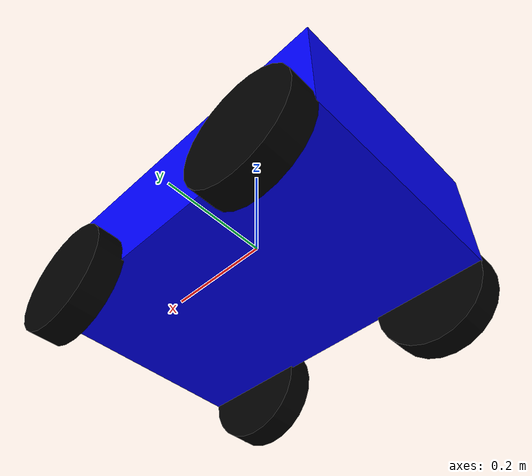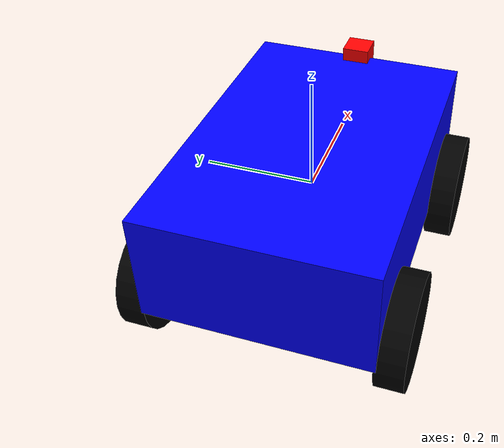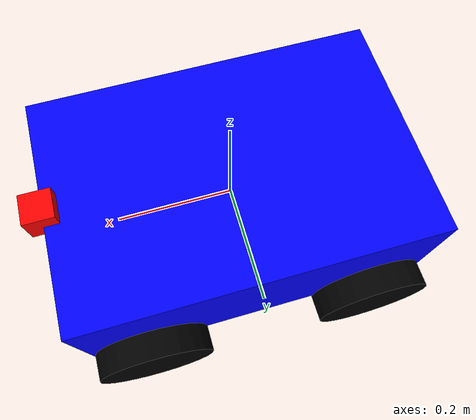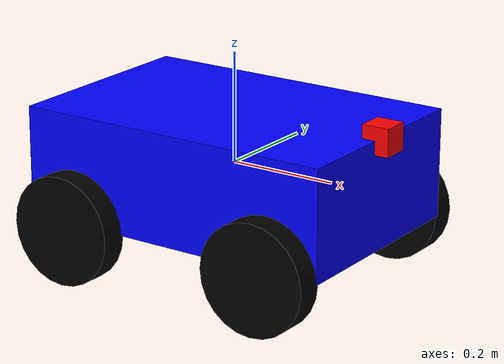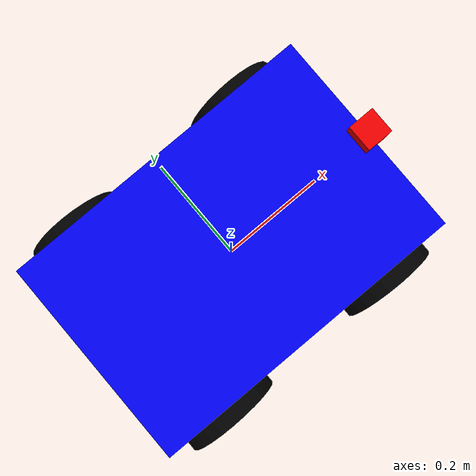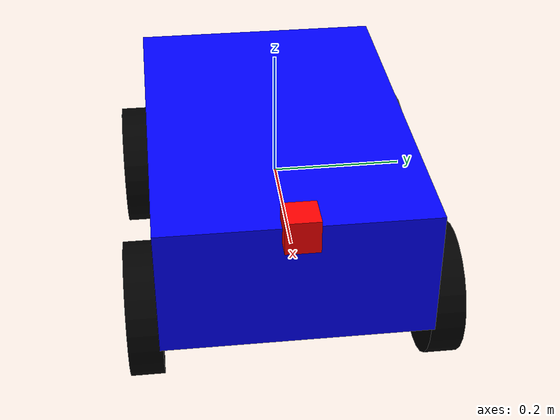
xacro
<?xml version="1.0"?>
<robot xmlns:xacro="http://www.ros.org/wiki/xacro" name="my_robot">

  <link name="base_link">
    <visual>
      <geometry>
        <box size="0.6 0.4 0.2"/>
      </geometry>
      <material name="blue">
        <color rgba="0 0 1 1"/>
      </material>
    </visual>
    <collision>
      <geometry>
        <box size="0.6 0.4 0.2"/>
      </geometry>
    </collision>
    <inertial>
      <mass value="5.0"/>
      <origin xyz="0 0 0" rpy="0 0 0"/>
      <inertia ixx="0.0833" ixy="0.0" ixz="0.0" iyy="0.1833" iyz="0.0" izz="0.2166"/>
    </inertial>
  </link>

  <link name="camera_link">
    <visual>
      <geometry>
        <box size="0.05 0.05 0.05"/>
      </geometry>
      <material name="red">
        <color rgba="1 0 0 1"/>
      </material>
    </visual>
    <collision>
      <geometry>
        <box size="0.05 0.05 0.05"/>
      </geometry>
    </collision>
    <inertial>
      <mass value="0.1"/>
      <origin xyz="0 0 0" rpy="0 0 0"/>
      <inertia ixx="0.00004" ixy="0.0" ixz="0.0" iyy="0.00004" iyz="0.0" izz="0.00004"/>
    </inertial>
  </link>

  <joint name="camera_joint" type="fixed">
    <parent link="base_link"/>
    <child link="camera_link"/>
    <origin xyz="0.3 0 0.1" rpy="0 0 0"/>
  </joint>

  <xacro:macro name="wheel" params="prefix x_pos y_pos">
    <link name="${prefix}_wheel">
      <visual>
        <geometry>
          <cylinder radius="0.1" length="0.05"/>
        </geometry>
        <material name="black">
          <color rgba="0 0 0 1"/>
        </material>
      </visual>
      <collision>
        <geometry>
          <cylinder radius="0.1" length="0.05"/>
        </geometry>
      </collision>
      <inertial>
        <mass value="0.5"/>
        <origin xyz="0 0 0" rpy="0 0 0"/>
        <inertia ixx="0.0014" ixy="0.0" ixz="0.0" iyy="0.0014" iyz="0.0" izz="0.0025"/>
      </inertial>
    </link>

    <joint name="${prefix}_wheel_joint" type="continuous">
      <parent link="base_link"/>
      <child link="${prefix}_wheel"/>
      <origin xyz="${x_pos} ${y_pos} -0.1" rpy="1.5708 0 0"/>
      <axis xyz="0 0 1"/>
    </joint>
  </xacro:macro>

  <xacro:wheel prefix="front_left" x_pos="0.2" y_pos="0.22"/>
  <xacro:wheel prefix="front_right" x_pos="0.2" y_pos="-0.22"/>
  <xacro:wheel prefix="back_left" x_pos="-0.2" y_pos="0.22"/>
  <xacro:wheel prefix="back_right" x_pos="-0.2" y_pos="-0.22"/>

  <gazebo>
    <plugin name="diff_drive" filename="libgazebo_ros_diff_drive.so">
      <ros>
        <namespace></namespace>
      </ros>

      <left_joint>front_left_wheel_joint</left_joint>
      <right_joint>front_right_wheel_joint</right_joint>

      <wheel_separation>0.44</wheel_separation>
      <wheel_radius>0.1</wheel_radius>

      <command_topic>cmd_vel</command_topic>
      <publish_odom>true</publish_odom>
      <publish_odom_tf>true</publish_odom_tf>
      <publish_wheel_tf>true</publish_wheel_tf>
      <odometry_topic>odom</odometry_topic>
      <odometry_frame>odom</odometry_frame>
      <robot_base_frame>base_link</robot_base_frame>
    </plugin>
  </gazebo>

</robot>
